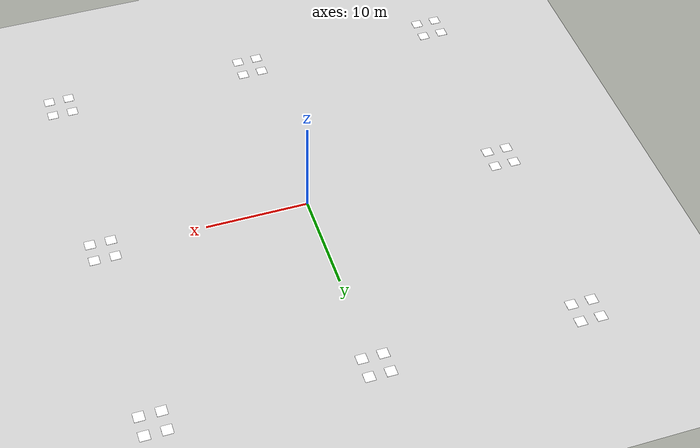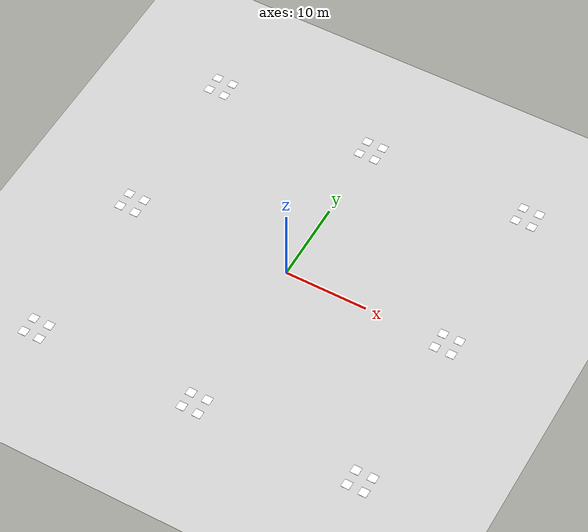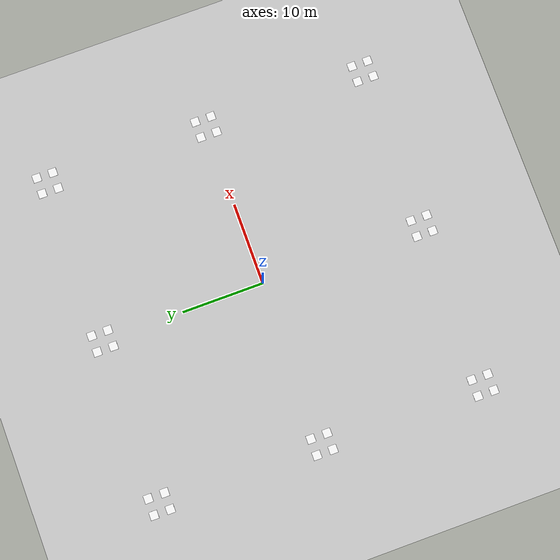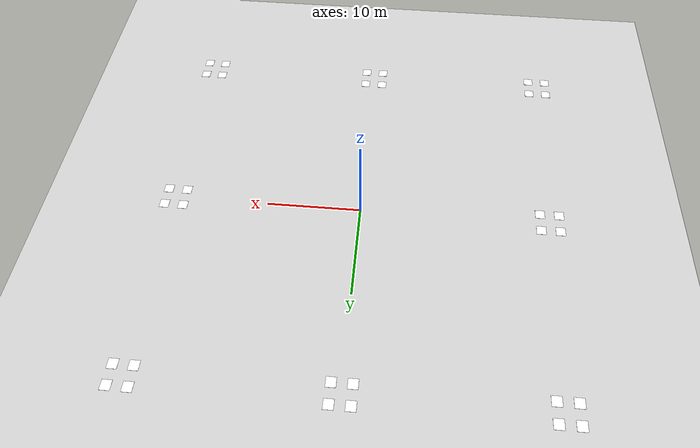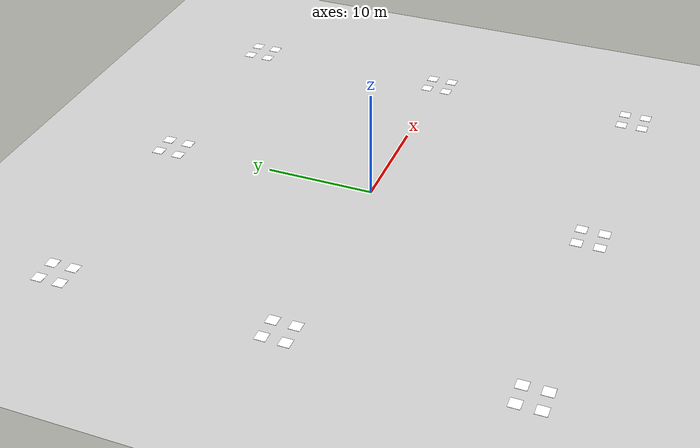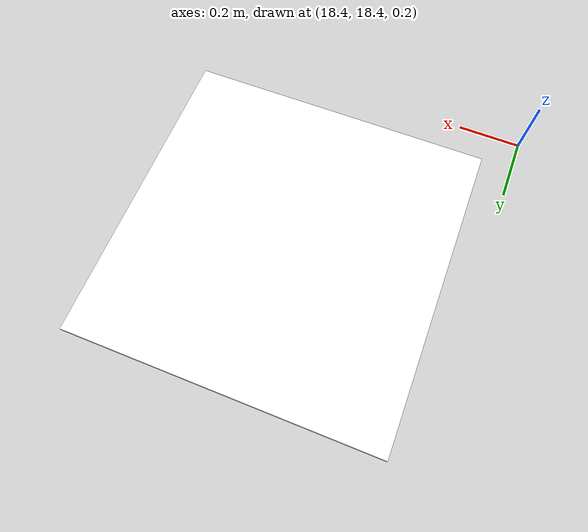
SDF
<?xml version="1.0" ?>
<sdf version="1.5">
  <world name="default">
    <!-- A global light source -->
    <include>
      <uri>model://sun</uri>
    </include>
    <!-- A ground plane -->
    <include>
      <uri>model://ground_plane</uri>
    </include>
    <include>
      <uri>model://asphalt_plane</uri>
    </include>
    <include>
      <name>landpad_station_1</name>
      <uri>model://land_pad_station</uri>
      <pose>20 20 0.1 0 0 0</pose>
    </include>
    <include>
      <name>landpad_station_2</name>
      <uri>model://land_pad_station</uri>
      <pose>20 -20 0.1 0 0 0</pose>
    </include>
    <include>
      <name>landpad_station_3</name>
      <uri>model://land_pad_station</uri>
      <pose>-20 20 0.1 0 0 0</pose>
    </include>
    <include>
      <name>landpad_station_4</name>
      <uri>model://land_pad_station</uri>
      <pose>-20 -20 0.1 0 0 0</pose>
    </include>
    <include>
      <name>charging_station_1</name>
      <uri>model://charging_station</uri>
      <pose>20 0 0.1 0 0 0</pose>
    </include>
    <include>
      <name>charging_station_2</name>
      <uri>model://charging_station</uri>
      <pose>0 20 0.1 0 0 0</pose>
    </include>
    <include>
      <name>charging_station_3</name>
      <uri>model://charging_station</uri>
      <pose>-20 0 0.1 0 0 0</pose>
    </include>
    <include>
      <name>charging_station_4</name>
      <uri>model://charging_station</uri>
      <pose>0 -20 0.1 0 0 0</pose>
    </include>
    <plugin name='gazebo_station_republisher' filename='libgazebo_station_republisher.so'> </plugin>
    <physics name='default_physics' default='0' type='ode'>
      <gravity>0 0 -9.8066</gravity>
      <ode>
        <solver>
          <type>quick</type>
          <iters>10</iters>
          <sor>1.3</sor>
          <use_dynamic_moi_rescaling>0</use_dynamic_moi_rescaling>
        </solver>
        <constraints>
          <cfm>0</cfm>
          <erp>0.2</erp>
          <contact_max_correcting_vel>100</contact_max_correcting_vel>
          <contact_surface_layer>0.001</contact_surface_layer>
        </constraints>
      </ode>
      <max_step_size>0.004</max_step_size>
      <real_time_factor>1</real_time_factor>
      <real_time_update_rate>250</real_time_update_rate>
      <magnetic_field>6.0e-6 2.3e-5 -4.2e-5</magnetic_field>
    </physics>
  </world>
</sdf>

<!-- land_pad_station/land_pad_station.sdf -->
<sdf version="1.5">
  <model name='land_pad_station'>
    <include>
      <name>land_pad_1</name>
      <uri>model://land_pad_v2</uri>
      <pose>1 -1 0.1 0 0 0</pose>
    </include>
    <include>
      <name>land_pad_2</name>
      <uri>model://land_pad_v2</uri>
      <pose>-1 1 0.1 0 0 0</pose>
    </include>
    <include>
      <name>land_pad_3</name>
      <uri>model://land_pad_v2</uri>
      <pose>1 1 0.1 0 0 0</pose>
    </include>
    <include>
      <name>land_pad_4</name>
      <uri>model://land_pad_v2</uri>
      <pose>-1 -1 0.1 0 0 0</pose>
    </include>
  </model>
</sdf>

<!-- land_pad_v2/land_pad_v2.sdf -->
<sdf version="1.5">
  <model name="land_pad_v2">
      <link name="link">
        <collision name="box_collision">
          <geometry>
            <box>
              <size>1 1 0.01</size>
            </box>
          </geometry>
        </collision>

        <visual name="visual">
          <geometry>
            <box>
              <size>1 1 0.02</size>
            </box>
          </geometry>
          <material>
            <script>
              <uri>model://land_pad_v2/materials/scripts</uri>
              <uri>model://land_pad_v2/materials/textures</uri>
              <name>ArucoVisualMarker0/Marker</name>
            </script>
            <ambient>1 1 1 1</ambient>
            <diffuse>1 1 1 1</diffuse>
            <specular>0 0 0 1</specular>
            <emissive>1 1 1 0</emissive>
            <shader type='vertex'>
              <normal_map>__default__</normal_map>
            </shader>
        </material>
        </visual>

        <sensor name='my_contact' type='contact'>
          <contact>
            <collision>box_collision</collision>
          </contact>
        </sensor>
      </link>
  </model>
</sdf>

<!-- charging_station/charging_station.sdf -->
<sdf version="1.5">
  <model name='charging_station'>
    <include>
      <name>charging_spot_1</name>
      <uri>model://charging_spot</uri>
      <pose>1 1 0.1 0 0 0</pose>
    </include>
    <include>
      <name>charging_spot_2</name>
      <uri>model://charging_spot</uri>
      <pose>1 -1 0.1 0 0 0</pose>
    </include>
    <include>
      <name>charging_spot_3</name>
      <uri>model://charging_spot</uri>
      <pose>-1 1 0.1 0 0 0</pose>
    </include>
    <include>
      <name>charging_spot_4</name>
      <uri>model://charging_spot</uri>
      <pose>-1 -1 0.1 0 0 0</pose>
    </include>
  </model>
</sdf>

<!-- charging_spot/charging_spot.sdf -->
<sdf version="1.5">
  <model name="charging_spot">
      <link name="link">
        <collision name="box_collision">
          <geometry>
            <box>
              <size>1 1 0.01</size>
            </box>
          </geometry>
        </collision>

        <visual name="visual">
          <geometry>
            <box>
              <size>1 1 0.02</size>
            </box>
          </geometry>
          <material>
            <script>
              <uri>model://charging_spot/materials/scripts</uri>
              <uri>model://charging_spot/materials/textures</uri>
              <name>VascoVisualMarker0/Marker</name>
            </script>
            <ambient>1 1 1 1</ambient>
            <diffuse>1 1 1 1</diffuse>
            <specular>0 0 0 1</specular>
            <emissive>1 1 1 0</emissive>
            <shader type='vertex'>
              <normal_map>__default__</normal_map>
            </shader>
        </material>
        </visual>

        <sensor name='my_contact' type='contact'>
          <contact>
            <collision>box_collision</collision>
          </contact>
        </sensor>
      </link>
  </model>
</sdf>
